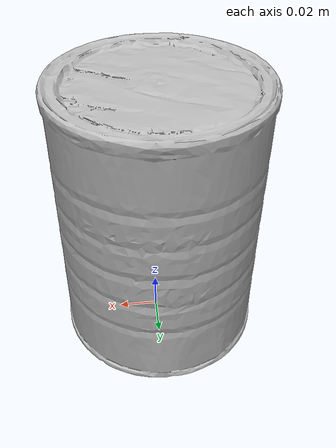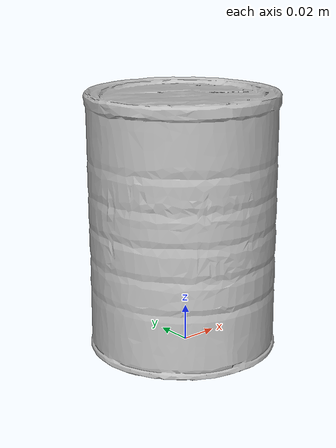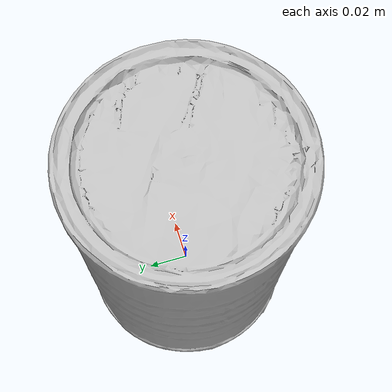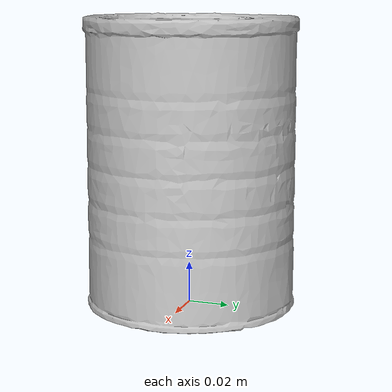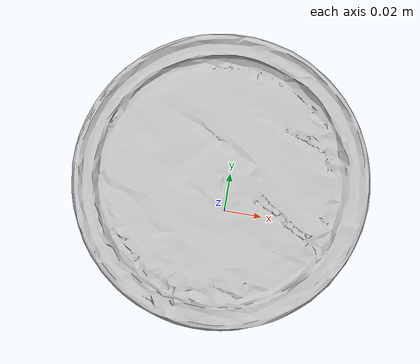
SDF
<?xml version="1.0"?>
<sdf version="1.6">
  <model name="master_chef_can">
    <link name="link">
      <inertial>
        <mass>0.414</mass>
      </inertial>
      <collision name="collision">
        <pose>0 0 0.0695 0 0 0</pose>
        <geometry>
          <cylinder>
            <radius>0.051</radius>
            <length>0.139</length>
          </cylinder>
        </geometry>
      </collision>
      <visual name="visual">
        <pose>0.015 0.01 0 0 0 0</pose>
        <geometry>
          <mesh>
            <uri>model://master_chef_can/meshes/textured.dae</uri>
          </mesh>
        </geometry>
      </visual>
    </link>
  </model>
</sdf>
